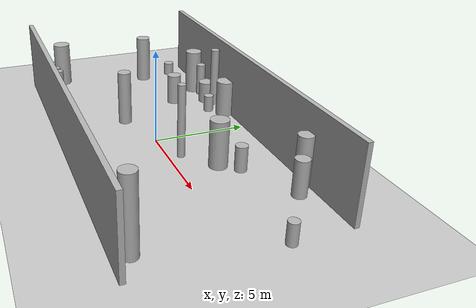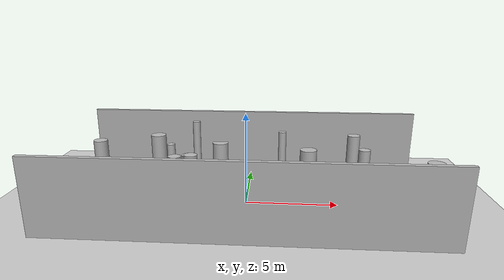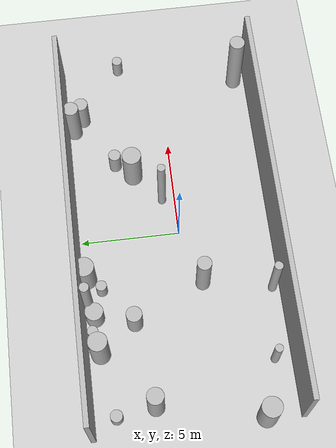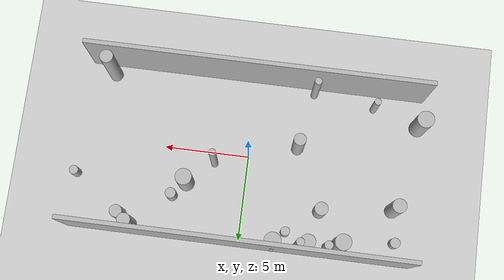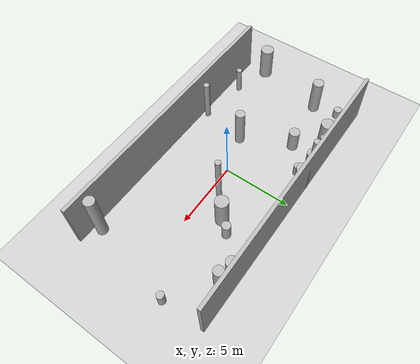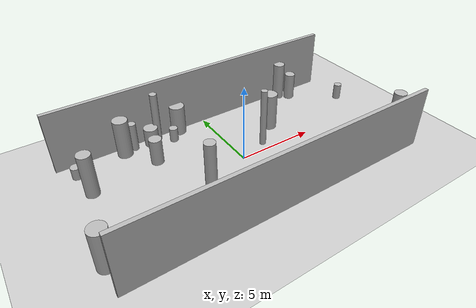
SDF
<?xml version="1.0"?>
<sdf version="1.4">
  <world name="default">
    <gui>
      <camera name="user_camera">
        <pose>-20 -30 40 0 0.66 0.83</pose>
      </camera>
    </gui>
    <include>
      <uri>model://ground_plane</uri>
    </include>
    <include>
      <uri>model://sun</uri>
    </include>
    <scene>
      <shadows>0</shadows>
    </scene>
    <model name="forest">
      <static>true</static>
      <link name="cylinder0">
        <pose>-5.166781727387102 4.747055076570732 0.9469841562649689 0 0 0 </pose>
        <visual name="visual">
          <geometry>
            <cylinder>
              <radius>0.2577244261244045</radius>
              <length>1.8939683125299378</length>
            </cylinder>
          </geometry>
        </visual>
        <collision name="collision">
          <geometry>
            <cylinder>
              <radius>0.2577244261244045</radius>
              <length>1.8939683125299378</length>
            </cylinder>
          </geometry>
          <max_contacts>0</max_contacts>
        </collision>
      </link>
      <link name="cylinder1">
        <pose>3.454019503623094 2.00423416219468 1.2615864068795148 0 0 0 </pose>
        <visual name="visual">
          <geometry>
            <cylinder>
              <radius>0.4782241956173462</radius>
              <length>2.5231728137590297</length>
            </cylinder>
          </geometry>
        </visual>
        <collision name="collision">
          <geometry>
            <cylinder>
              <radius>0.4782241956173462</radius>
              <length>2.5231728137590297</length>
            </cylinder>
          </geometry>
          <max_contacts>0</max_contacts>
        </collision>
      </link>
      <link name="cylinder2">
        <pose>-9.82473530298031 -2.986931777404754 1.2978294764979115 0 0 0 </pose>
        <visual name="visual">
          <geometry>
            <cylinder>
              <radius>0.49414229658442377</radius>
              <length>2.595658952995823</length>
            </cylinder>
          </geometry>
        </visual>
        <collision name="collision">
          <geometry>
            <cylinder>
              <radius>0.49414229658442377</radius>
              <length>2.595658952995823</length>
            </cylinder>
          </geometry>
          <max_contacts>0</max_contacts>
        </collision>
      </link>
      <link name="cylinder3">
        <pose>-3.4679718579261625 -4.2706210198162475 1.6290178517482858 0 0 0 </pose>
        <visual name="visual">
          <geometry>
            <cylinder>
              <radius>0.21210714686572046</radius>
              <length>3.2580357034965717</length>
            </cylinder>
          </geometry>
        </visual>
        <collision name="collision">
          <geometry>
            <cylinder>
              <radius>0.21210714686572046</radius>
              <length>3.2580357034965717</length>
            </cylinder>
          </geometry>
          <max_contacts>0</max_contacts>
        </collision>
      </link>
      <link name="cylinder4">
        <pose>6.411864448488693 4.828829054681785 1.333185579601954 0 0 0 </pose>
        <visual name="visual">
          <geometry>
            <cylinder>
              <radius>0.3857007633214033</radius>
              <length>2.666371159203908</length>
            </cylinder>
          </geometry>
        </visual>
        <collision name="collision">
          <geometry>
            <cylinder>
              <radius>0.3857007633214033</radius>
              <length>2.666371159203908</length>
            </cylinder>
          </geometry>
          <max_contacts>0</max_contacts>
        </collision>
      </link>
      <link name="cylinder5">
        <pose>-2.8261719204732376 -0.8505874947220882 1.4882511994741836 0 0 0 </pose>
        <visual name="visual">
          <geometry>
            <cylinder>
              <radius>0.35629661954547753</radius>
              <length>2.976502398948367</length>
            </cylinder>
          </geometry>
        </visual>
        <collision name="collision">
          <geometry>
            <cylinder>
              <radius>0.35629661954547753</radius>
              <length>2.976502398948367</length>
            </cylinder>
          </geometry>
          <max_contacts>0</max_contacts>
        </collision>
      </link>
      <link name="cylinder6">
        <pose>9.980142437281671 2.194902609767717 0.5516626797703721 0 0 0 </pose>
        <visual name="visual">
          <geometry>
            <cylinder>
              <radius>0.26109136902845165</radius>
              <length>1.1033253595407442</length>
            </cylinder>
          </geometry>
        </visual>
        <collision name="collision">
          <geometry>
            <cylinder>
              <radius>0.26109136902845165</radius>
              <length>1.1033253595407442</length>
            </cylinder>
          </geometry>
          <max_contacts>0</max_contacts>
        </collision>
      </link>
      <link name="cylinder7">
        <pose>4.180038503277203 2.8605914822195775 0.67362771407083 0 0 0 </pose>
        <visual name="visual">
          <geometry>
            <cylinder>
              <radius>0.3123991319424687</radius>
              <length>1.34725542814166</length>
            </cylinder>
          </geometry>
        </visual>
        <collision name="collision">
          <geometry>
            <cylinder>
              <radius>0.3123991319424687</radius>
              <length>1.34725542814166</length>
            </cylinder>
          </geometry>
          <max_contacts>0</max_contacts>
        </collision>
      </link>
      <link name="cylinder8">
        <pose>-9.039430031028587 4.057854527156287 0.38224768751338073 0 0 0 </pose>
        <visual name="visual">
          <geometry>
            <cylinder>
              <radius>0.3032101760283918</radius>
              <length>0.7644953750267615</length>
            </cylinder>
          </geometry>
        </visual>
        <collision name="collision">
          <geometry>
            <cylinder>
              <radius>0.3032101760283918</radius>
              <length>0.7644953750267615</length>
            </cylinder>
          </geometry>
          <max_contacts>0</max_contacts>
        </collision>
      </link>
      <link name="cylinder9">
        <pose>8.56723633880939 -4.042670949570639 1.9293712388421693 0 0 0 </pose>
        <visual name="visual">
          <geometry>
            <cylinder>
              <radius>0.38478049275849624</radius>
              <length>3.8587424776843386</length>
            </cylinder>
          </geometry>
        </visual>
        <collision name="collision">
          <geometry>
            <cylinder>
              <radius>0.38478049275849624</radius>
              <length>3.8587424776843386</length>
            </cylinder>
          </geometry>
          <max_contacts>0</max_contacts>
        </collision>
      </link>
      <link name="cylinder10">
        <pose>-4.018907181903826 4.642239476316853 0.6099291181749329 0 0 0 </pose>
        <visual name="visual">
          <geometry>
            <cylinder>
              <radius>0.4525637161855727</radius>
              <length>1.2198582363498658</length>
            </cylinder>
          </geometry>
        </visual>
        <collision name="collision">
          <geometry>
            <cylinder>
              <radius>0.4525637161855727</radius>
              <length>1.2198582363498658</length>
            </cylinder>
          </geometry>
          <max_contacts>0</max_contacts>
        </collision>
      </link>
      <link name="cylinder11">
        <pose>-5.884513504551383 4.538024690847157 1.2777195633218665 0 0 0 </pose>
        <visual name="visual">
          <geometry>
            <cylinder>
              <radius>0.4724756675642437</radius>
              <length>2.555439126643733</length>
            </cylinder>
          </geometry>
        </visual>
        <collision name="collision">
          <geometry>
            <cylinder>
              <radius>0.4724756675642437</radius>
              <length>2.555439126643733</length>
            </cylinder>
          </geometry>
          <max_contacts>0</max_contacts>
        </collision>
      </link>
      <link name="cylinder12">
        <pose>-1.9745901885744317 4.894854261894036 1.0079138764817954 0 0 0 </pose>
        <visual name="visual">
          <geometry>
            <cylinder>
              <radius>0.49504422908734397</radius>
              <length>2.015827752963591</length>
            </cylinder>
          </geometry>
        </visual>
        <collision name="collision">
          <geometry>
            <cylinder>
              <radius>0.49504422908734397</radius>
              <length>2.015827752963591</length>
            </cylinder>
          </geometry>
          <max_contacts>0</max_contacts>
        </collision>
      </link>
      <link name="cylinder13">
        <pose>-4.529383047706843 2.729946785497626 0.8611935092618384 0 0 0 </pose>
        <visual name="visual">
          <geometry>
            <cylinder>
              <radius>0.39338282980419653</radius>
              <length>1.7223870185236767</length>
            </cylinder>
          </geometry>
        </visual>
        <collision name="collision">
          <geometry>
            <cylinder>
              <radius>0.39338282980419653</radius>
              <length>1.7223870185236767</length>
            </cylinder>
          </geometry>
          <max_contacts>0</max_contacts>
        </collision>
      </link>
      <link name="cylinder14">
        <pose>7.060381331297524 4.330939224176243 0.9461743369518432 0 0 0 </pose>
        <visual name="visual">
          <geometry>
            <cylinder>
              <radius>0.3616901911881244</radius>
              <length>1.8923486739036863</length>
            </cylinder>
          </geometry>
        </visual>
        <collision name="collision">
          <geometry>
            <cylinder>
              <radius>0.3616901911881244</radius>
              <length>1.8923486739036863</length>
            </cylinder>
          </geometry>
          <max_contacts>0</max_contacts>
        </collision>
      </link>
      <link name="cylinder15">
        <pose>1.9332609074237332 0.6569591223324363 1.9497313743605538 0 0 0 </pose>
        <visual name="visual">
          <geometry>
            <cylinder>
              <radius>0.20250625093484126</radius>
              <length>3.8994627487211075</length>
            </cylinder>
          </geometry>
        </visual>
        <collision name="collision">
          <geometry>
            <cylinder>
              <radius>0.20250625093484126</radius>
              <length>3.8994627487211075</length>
            </cylinder>
          </geometry>
          <max_contacts>0</max_contacts>
        </collision>
      </link>
      <link name="cylinder16">
        <pose>-7.079668952878517 -3.8113659726658113 1.0405230830789434 0 0 0 </pose>
        <visual name="visual">
          <geometry>
            <cylinder>
              <radius>0.2001710689473676</radius>
              <length>2.0810461661578867</length>
            </cylinder>
          </geometry>
        </visual>
        <collision name="collision">
          <geometry>
            <cylinder>
              <radius>0.2001710689473676</radius>
              <length>2.0810461661578867</length>
            </cylinder>
          </geometry>
          <max_contacts>0</max_contacts>
        </collision>
      </link>
      <link name="cylinder17">
        <pose>-8.757159179142242 2.165897170365618 1.3995210649988974 0 0 0 </pose>
        <visual name="visual">
          <geometry>
            <cylinder>
              <radius>0.4110817391998549</radius>
              <length>2.799042129997795</length>
            </cylinder>
          </geometry>
        </visual>
        <collision name="collision">
          <geometry>
            <cylinder>
              <radius>0.4110817391998549</radius>
              <length>2.799042129997795</length>
            </cylinder>
          </geometry>
          <max_contacts>0</max_contacts>
        </collision>
      </link>
      <link name="cylinder18">
        <pose>-3.473805382683439 4.883108584581967 1.6912617463404114 0 0 0 </pose>
        <visual name="visual">
          <geometry>
            <cylinder>
              <radius>0.23563538705277862</radius>
              <length>3.3825234926808228</length>
            </cylinder>
          </geometry>
        </visual>
        <collision name="collision">
          <geometry>
            <cylinder>
              <radius>0.23563538705277862</radius>
              <length>3.3825234926808228</length>
            </cylinder>
          </geometry>
          <max_contacts>0</max_contacts>
        </collision>
      </link>
      <link name="cylinder19">
        <pose>-2.6578415992119897 4.1897015694944955 0.4675637917513512 0 0 0 </pose>
        <visual name="visual">
          <geometry>
            <cylinder>
              <radius>0.2719464428856225</radius>
              <length>0.9351275835027024</length>
            </cylinder>
          </geometry>
        </visual>
        <collision name="collision">
          <geometry>
            <cylinder>
              <radius>0.2719464428856225</radius>
              <length>0.9351275835027024</length>
            </cylinder>
          </geometry>
          <max_contacts>0</max_contacts>
        </collision>
      </link>
      <link name="cube0">
        <pose>0 5.25 2.0 0 0 0 </pose>
        <visual name="visual">
          <geometry>
            <box>
              <size>20 0.25 4.0</size>
            </box>
          </geometry>
        </visual>
        <collision name="collision">
          <geometry>
            <box>
              <size>20 0.25 4.0</size>
            </box>
          </geometry>
          <max_contacts>0</max_contacts>
        </collision>
      </link>
      <link name="cube1">
        <pose>0 -4.75 2.0 0 0 0 </pose>
        <visual name="visual">
          <geometry>
            <box>
              <size>20 0.25 4.0</size>
            </box>
          </geometry>
        </visual>
        <collision name="collision">
          <geometry>
            <box>
              <size>20 0.25 4.0</size>
            </box>
          </geometry>
          <max_contacts>0</max_contacts>
        </collision>
      </link>
    </model>
    <!-- Plugins -->
    <plugin name="gazebo_octomap" filename="librotors_gazebo_octomap_plugin.so"/>
    <plugin name="ros_interface_plugin" filename="librotors_gazebo_ros_interface_plugin.so"/>
    <!-- Physics -->
    <physics name="default_physics" default="0" type="ode">
      <max_step_size>0.004</max_step_size>
      <real_time_factor>1</real_time_factor>
      <real_time_update_rate>250</real_time_update_rate>
      <gravity>0 0 -9.8</gravity>
      <magnetic_field>6e-06 2.3e-05 -4.2e-05</magnetic_field>
      <ode>
        <solver>
          <type>quick</type>
          <iters>1000</iters>
          <sor>1.3</sor>
          <use_dynamic_moi_rescaling>0</use_dynamic_moi_rescaling>
        </solver>
        <constraints>
          <cfm>0</cfm>
          <erp>0.2</erp>
          <contact_max_correcting_vel>100</contact_max_correcting_vel>
          <contact_surface_layer>0.001</contact_surface_layer>
        </constraints>
      </ode>
    </physics>
  </world>
</sdf>
